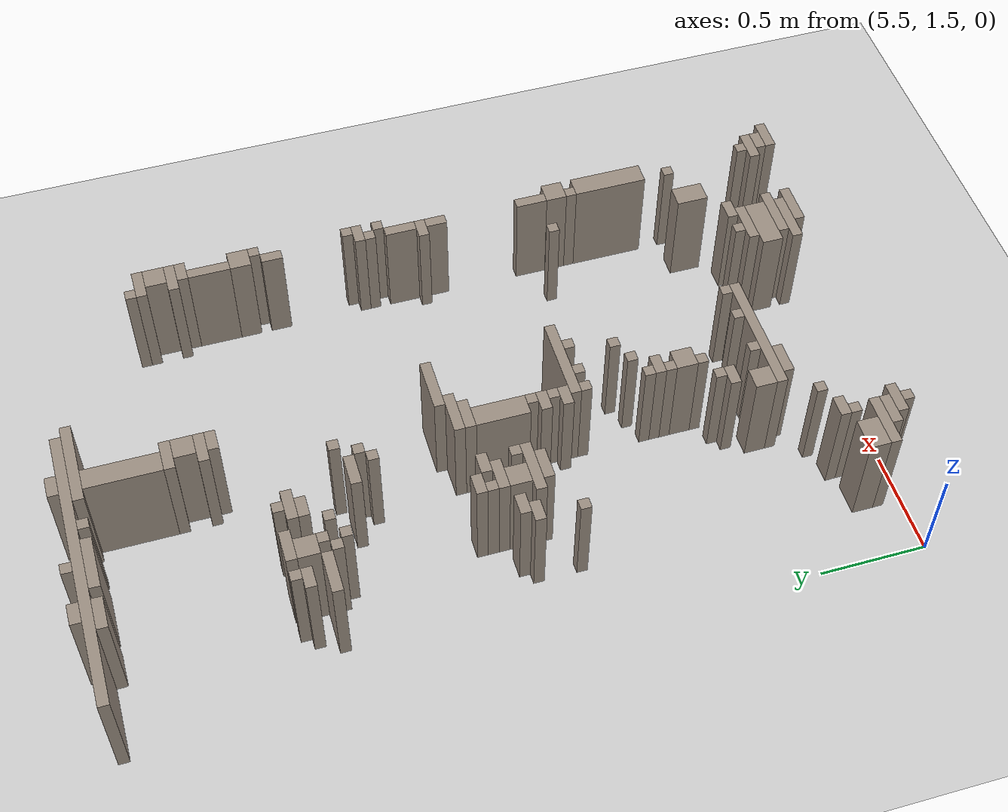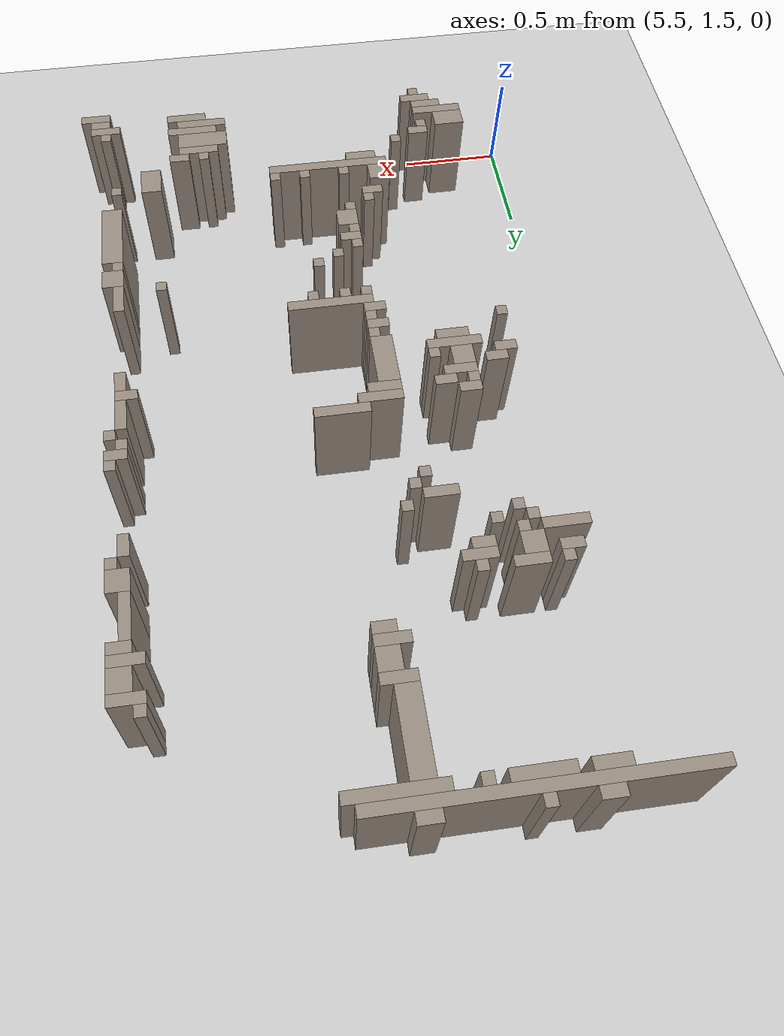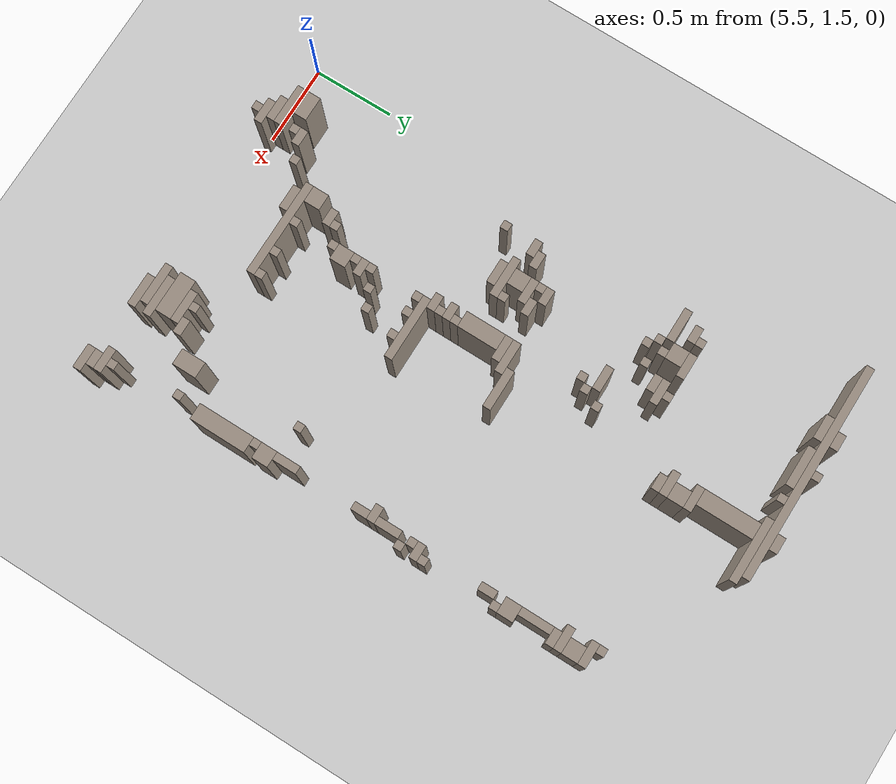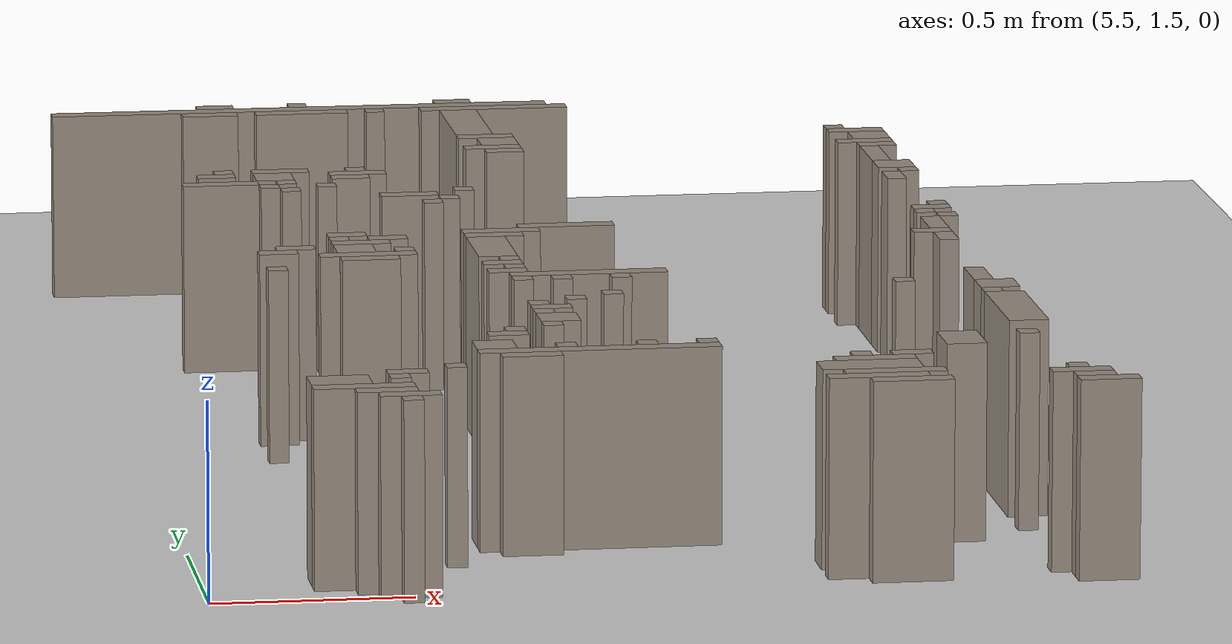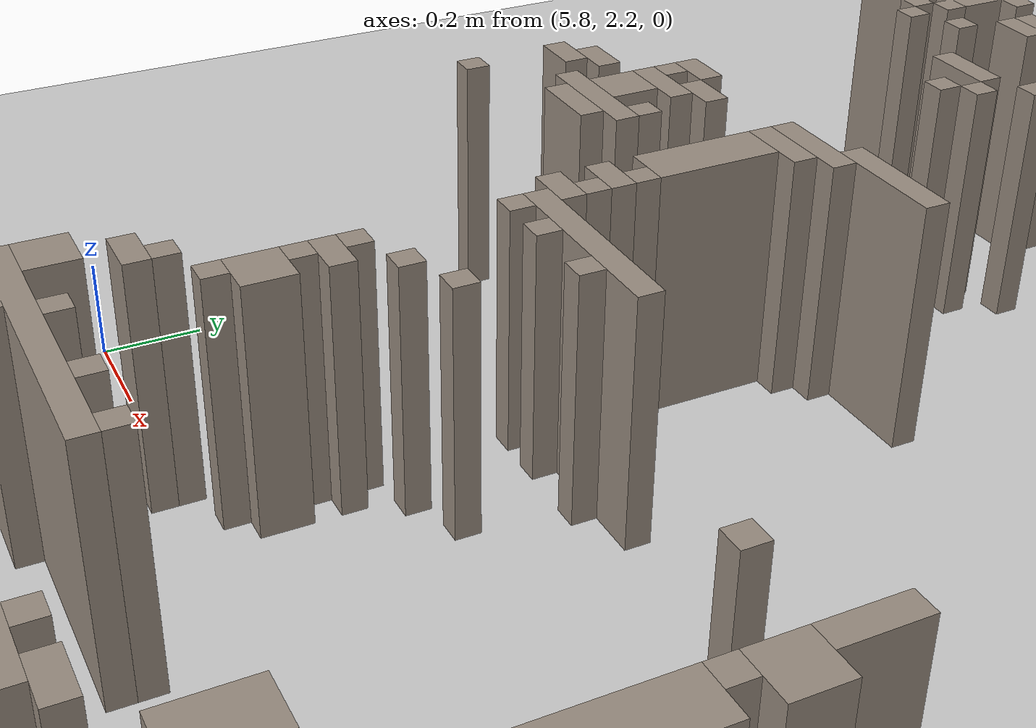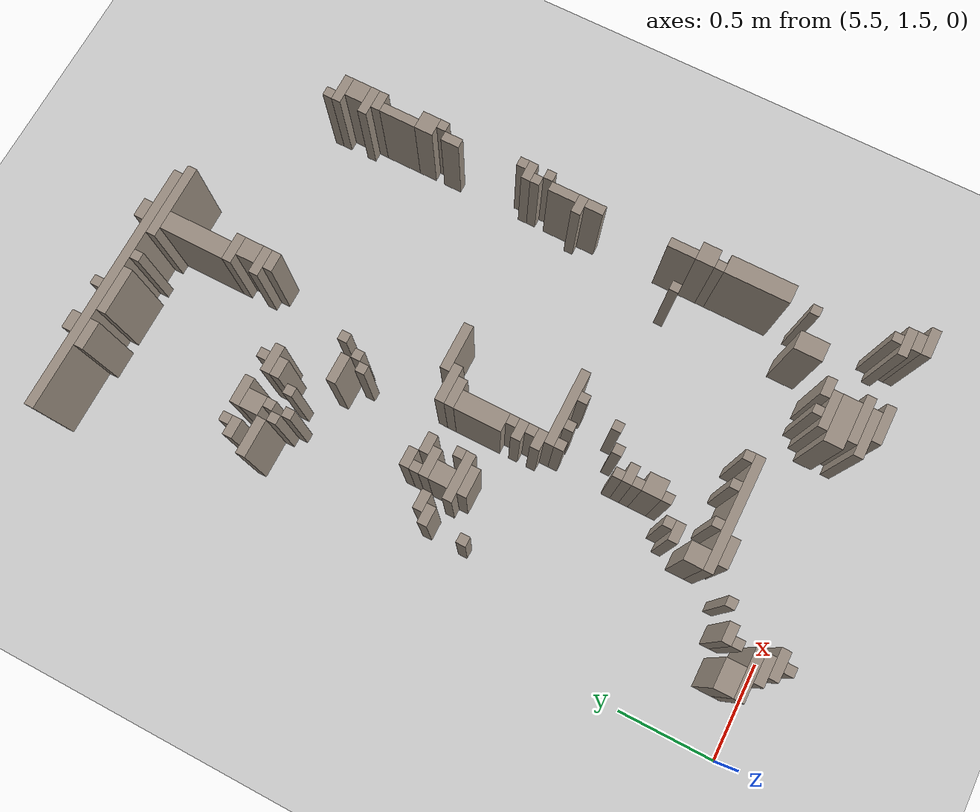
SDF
<sdf version="1.8">
 <world name="sala_real">
  <model name="ground_plane">
   <static>true</static>
   <link name="link">
    <collision name="col">
     <geometry><plane><normal>0 0 1</normal><size>100 100</size></plane></geometry>
    </collision>
    <visual name="vis">
     <geometry><plane><normal>0 0 1</normal><size>100 100</size></plane></geometry>
     <material><ambient>0.8 0.8 0.8 1</ambient><diffuse>0.8 0.8 0.8 1</diffuse></material>
    </visual>
   </link>
  </model>
  <model name="wall_0">
   <static>true</static>
   <pose>6.565 5.162 0.250 0 0 0</pose>
   <link name="link">
    <collision name="col"><geometry><box><size>0.100 0.050 0.500</size></box></geometry></collision>
    <visual name="vis">
     <geometry><box><size>0.100 0.050 0.500</size></box></geometry>
     <material><ambient>0.6 0.55 0.5 1</ambient><diffuse>0.6 0.55 0.5 1</diffuse></material>
    </visual>
   </link>
  </model>
  <model name="wall_7">
   <static>true</static>
   <pose>6.590 4.662 0.250 0 0 0</pose>
   <link name="link">
    <collision name="col"><geometry><box><size>0.150 0.050 0.500</size></box></geometry></collision>
    <visual name="vis">
     <geometry><box><size>0.150 0.050 0.500</size></box></geometry>
     <material><ambient>0.6 0.55 0.5 1</ambient><diffuse>0.6 0.55 0.5 1</diffuse></material>
    </visual>
   </link>
  </model>
  <model name="wall_9">
   <static>true</static>
   <pose>6.615 4.587 0.250 0 0 0</pose>
   <link name="link">
    <collision name="col"><geometry><box><size>0.100 0.100 0.500</size></box></geometry></collision>
    <visual name="vis">
     <geometry><box><size>0.100 0.100 0.500</size></box></geometry>
     <material><ambient>0.6 0.55 0.5 1</ambient><diffuse>0.6 0.55 0.5 1</diffuse></material>
    </visual>
   </link>
  </model>
  <model name="wall_10">
   <static>true</static>
   <pose>7.590 4.612 0.250 0 0 0</pose>
   <link name="link">
    <collision name="col"><geometry><box><size>0.150 0.050 0.500</size></box></geometry></collision>
    <visual name="vis">
     <geometry><box><size>0.150 0.050 0.500</size></box></geometry>
     <material><ambient>0.6 0.55 0.5 1</ambient><diffuse>0.6 0.55 0.5 1</diffuse></material>
    </visual>
   </link>
  </model>
  <model name="wall_12">
   <static>true</static>
   <pose>7.615 4.537 0.250 0 0 0</pose>
   <link name="link">
    <collision name="col"><geometry><box><size>0.100 0.100 0.500</size></box></geometry></collision>
    <visual name="vis">
     <geometry><box><size>0.100 0.100 0.500</size></box></geometry>
     <material><ambient>0.6 0.55 0.5 1</ambient><diffuse>0.6 0.55 0.5 1</diffuse></material>
    </visual>
   </link>
  </model>
  <model name="wall_17">
   <static>true</static>
   <pose>7.615 4.412 0.250 0 0 0</pose>
   <link name="link">
    <collision name="col"><geometry><box><size>0.100 0.050 0.500</size></box></geometry></collision>
    <visual name="vis">
     <geometry><box><size>0.100 0.050 0.500</size></box></geometry>
     <material><ambient>0.6 0.55 0.5 1</ambient><diffuse>0.6 0.55 0.5 1</diffuse></material>
    </visual>
   </link>
  </model>
  <model name="wall_19">
   <static>true</static>
   <pose>5.815 4.112 0.250 0 0 0</pose>
   <link name="link">
    <collision name="col"><geometry><box><size>0.200 0.050 0.500</size></box></geometry></collision>
    <visual name="vis">
     <geometry><box><size>0.200 0.050 0.500</size></box></geometry>
     <material><ambient>0.6 0.55 0.5 1</ambient><diffuse>0.6 0.55 0.5 1</diffuse></material>
    </visual>
   </link>
  </model>
  <model name="wall_20">
   <static>true</static>
   <pose>5.990 4.112 0.250 0 0 0</pose>
   <link name="link">
    <collision name="col"><geometry><box><size>0.050 0.050 0.500</size></box></geometry></collision>
    <visual name="vis">
     <geometry><box><size>0.050 0.050 0.500</size></box></geometry>
     <material><ambient>0.6 0.55 0.5 1</ambient><diffuse>0.6 0.55 0.5 1</diffuse></material>
    </visual>
   </link>
  </model>
  <model name="wall_21">
   <static>true</static>
   <pose>7.590 4.287 0.250 0 0 0</pose>
   <link name="link">
    <collision name="col"><geometry><box><size>0.050 0.200 0.500</size></box></geometry></collision>
    <visual name="vis">
     <geometry><box><size>0.050 0.200 0.500</size></box></geometry>
     <material><ambient>0.6 0.55 0.5 1</ambient><diffuse>0.6 0.55 0.5 1</diffuse></material>
    </visual>
   </link>
  </model>
  <model name="wall_23">
   <static>true</static>
   <pose>6.340 5.062 0.250 0 0 0</pose>
   <link name="link">
    <collision name="col"><geometry><box><size>0.050 0.050 0.500</size></box></geometry></collision>
    <visual name="vis">
     <geometry><box><size>0.050 0.050 0.500</size></box></geometry>
     <material><ambient>0.6 0.55 0.5 1</ambient><diffuse>0.6 0.55 0.5 1</diffuse></material>
    </visual>
   </link>
  </model>
  <model name="wall_27">
   <static>true</static>
   <pose>7.640 4.062 0.250 0 0 0</pose>
   <link name="link">
    <collision name="col"><geometry><box><size>0.050 0.050 0.500</size></box></geometry></collision>
    <visual name="vis">
     <geometry><box><size>0.050 0.050 0.500</size></box></geometry>
     <material><ambient>0.6 0.55 0.5 1</ambient><diffuse>0.6 0.55 0.5 1</diffuse></material>
    </visual>
   </link>
  </model>
  <model name="wall_28">
   <static>true</static>
   <pose>7.615 4.137 0.250 0 0 0</pose>
   <link name="link">
    <collision name="col"><geometry><box><size>0.100 0.100 0.500</size></box></geometry></collision>
    <visual name="vis">
     <geometry><box><size>0.100 0.100 0.500</size></box></geometry>
     <material><ambient>0.6 0.55 0.5 1</ambient><diffuse>0.6 0.55 0.5 1</diffuse></material>
    </visual>
   </link>
  </model>
  <model name="wall_30">
   <static>true</static>
   <pose>7.590 3.987 0.250 0 0 0</pose>
   <link name="link">
    <collision name="col"><geometry><box><size>0.050 0.100 0.500</size></box></geometry></collision>
    <visual name="vis">
     <geometry><box><size>0.050 0.100 0.500</size></box></geometry>
     <material><ambient>0.6 0.55 0.5 1</ambient><diffuse>0.6 0.55 0.5 1</diffuse></material>
    </visual>
   </link>
  </model>
  <model name="wall_34">
   <static>true</static>
   <pose>7.640 3.612 0.250 0 0 0</pose>
   <link name="link">
    <collision name="col"><geometry><box><size>0.050 0.050 0.500</size></box></geometry></collision>
    <visual name="vis">
     <geometry><box><size>0.050 0.050 0.500</size></box></geometry>
     <material><ambient>0.6 0.55 0.5 1</ambient><diffuse>0.6 0.55 0.5 1</diffuse></material>
    </visual>
   </link>
  </model>
  <model name="wall_36">
   <static>true</static>
   <pose>7.590 3.512 0.250 0 0 0</pose>
   <link name="link">
    <collision name="col"><geometry><box><size>0.050 0.050 0.500</size></box></geometry></collision>
    <visual name="vis">
     <geometry><box><size>0.050 0.050 0.500</size></box></geometry>
     <material><ambient>0.6 0.55 0.5 1</ambient><diffuse>0.6 0.55 0.5 1</diffuse></material>
    </visual>
   </link>
  </model>
  <model name="wall_37">
   <static>true</static>
   <pose>6.165 4.162 0.250 0 0 0</pose>
   <link name="link">
    <collision name="col"><geometry><box><size>0.100 0.050 0.500</size></box></geometry></collision>
    <visual name="vis">
     <geometry><box><size>0.100 0.050 0.500</size></box></geometry>
     <material><ambient>0.6 0.55 0.5 1</ambient><diffuse>0.6 0.55 0.5 1</diffuse></material>
    </visual>
   </link>
  </model>
  <model name="wall_39">
   <static>true</static>
   <pose>5.915 5.162 0.250 0 0 0</pose>
   <link name="link">
    <collision name="col"><geometry><box><size>0.100 0.050 0.500</size></box></geometry></collision>
    <visual name="vis">
     <geometry><box><size>0.100 0.050 0.500</size></box></geometry>
     <material><ambient>0.6 0.55 0.5 1</ambient><diffuse>0.6 0.55 0.5 1</diffuse></material>
    </visual>
   </link>
  </model>
  <model name="wall_40">
   <static>true</static>
   <pose>6.065 3.412 0.250 0 0 0</pose>
   <link name="link">
    <collision name="col"><geometry><box><size>0.100 0.050 0.500</size></box></geometry></collision>
    <visual name="vis">
     <geometry><box><size>0.100 0.050 0.500</size></box></geometry>
     <material><ambient>0.6 0.55 0.5 1</ambient><diffuse>0.6 0.55 0.5 1</diffuse></material>
    </visual>
   </link>
  </model>
  <model name="wall_41">
   <static>true</static>
   <pose>6.190 4.262 0.250 0 0 0</pose>
   <link name="link">
    <collision name="col"><geometry><box><size>0.050 0.050 0.500</size></box></geometry></collision>
    <visual name="vis">
     <geometry><box><size>0.050 0.050 0.500</size></box></geometry>
     <material><ambient>0.6 0.55 0.5 1</ambient><diffuse>0.6 0.55 0.5 1</diffuse></material>
    </visual>
   </link>
  </model>
  <model name="wall_42">
   <static>true</static>
   <pose>7.590 3.362 0.250 0 0 0</pose>
   <link name="link">
    <collision name="col"><geometry><box><size>0.050 0.150 0.500</size></box></geometry></collision>
    <visual name="vis">
     <geometry><box><size>0.050 0.150 0.500</size></box></geometry>
     <material><ambient>0.6 0.55 0.5 1</ambient><diffuse>0.6 0.55 0.5 1</diffuse></material>
    </visual>
   </link>
  </model>
  <model name="wall_46">
   <static>true</static>
   <pose>6.090 3.312 0.250 0 0 0</pose>
   <link name="link">
    <collision name="col"><geometry><box><size>0.150 0.050 0.500</size></box></geometry></collision>
    <visual name="vis">
     <geometry><box><size>0.150 0.050 0.500</size></box></geometry>
     <material><ambient>0.6 0.55 0.5 1</ambient><diffuse>0.6 0.55 0.5 1</diffuse></material>
    </visual>
   </link>
  </model>
  <model name="wall_48">
   <static>true</static>
   <pose>6.440 3.962 0.250 0 0 0</pose>
   <link name="link">
    <collision name="col"><geometry><box><size>0.050 0.050 0.500</size></box></geometry></collision>
    <visual name="vis">
     <geometry><box><size>0.050 0.050 0.500</size></box></geometry>
     <material><ambient>0.6 0.55 0.5 1</ambient><diffuse>0.6 0.55 0.5 1</diffuse></material>
    </visual>
   </link>
  </model>
  <model name="wall_50">
   <static>true</static>
   <pose>5.840 4.262 0.250 0 0 0</pose>
   <link name="link">
    <collision name="col"><geometry><box><size>0.050 0.050 0.500</size></box></geometry></collision>
    <visual name="vis">
     <geometry><box><size>0.050 0.050 0.500</size></box></geometry>
     <material><ambient>0.6 0.55 0.5 1</ambient><diffuse>0.6 0.55 0.5 1</diffuse></material>
    </visual>
   </link>
  </model>
  <model name="wall_51">
   <static>true</static>
   <pose>6.415 3.212 0.250 0 0 0</pose>
   <link name="link">
    <collision name="col"><geometry><box><size>0.100 0.250 0.500</size></box></geometry></collision>
    <visual name="vis">
     <geometry><box><size>0.100 0.250 0.500</size></box></geometry>
     <material><ambient>0.6 0.55 0.5 1</ambient><diffuse>0.6 0.55 0.5 1</diffuse></material>
    </visual>
   </link>
  </model>
  <model name="wall_53">
   <static>true</static>
   <pose>6.440 3.062 0.250 0 0 0</pose>
   <link name="link">
    <collision name="col"><geometry><box><size>0.050 0.050 0.500</size></box></geometry></collision>
    <visual name="vis">
     <geometry><box><size>0.050 0.050 0.500</size></box></geometry>
     <material><ambient>0.6 0.55 0.5 1</ambient><diffuse>0.6 0.55 0.5 1</diffuse></material>
    </visual>
   </link>
  </model>
  <model name="wall_55">
   <static>true</static>
   <pose>6.415 3.012 0.250 0 0 0</pose>
   <link name="link">
    <collision name="col"><geometry><box><size>0.100 0.050 0.500</size></box></geometry></collision>
    <visual name="vis">
     <geometry><box><size>0.100 0.050 0.500</size></box></geometry>
     <material><ambient>0.6 0.55 0.5 1</ambient><diffuse>0.6 0.55 0.5 1</diffuse></material>
    </visual>
   </link>
  </model>
  <model name="wall_60">
   <static>true</static>
   <pose>6.440 2.962 0.250 0 0 0</pose>
   <link name="link">
    <collision name="col"><geometry><box><size>0.050 0.050 0.500</size></box></geometry></collision>
    <visual name="vis">
     <geometry><box><size>0.050 0.050 0.500</size></box></geometry>
     <material><ambient>0.6 0.55 0.5 1</ambient><diffuse>0.6 0.55 0.5 1</diffuse></material>
    </visual>
   </link>
  </model>
  <model name="wall_63">
   <static>true</static>
   <pose>7.590 3.187 0.250 0 0 0</pose>
   <link name="link">
    <collision name="col"><geometry><box><size>0.050 0.100 0.500</size></box></geometry></collision>
    <visual name="vis">
     <geometry><box><size>0.050 0.100 0.500</size></box></geometry>
     <material><ambient>0.6 0.55 0.5 1</ambient><diffuse>0.6 0.55 0.5 1</diffuse></material>
    </visual>
   </link>
  </model>
  <model name="wall_64">
   <static>true</static>
   <pose>7.615 3.562 0.250 0 0 0</pose>
   <link name="link">
    <collision name="col"><geometry><box><size>0.100 0.050 0.500</size></box></geometry></collision>
    <visual name="vis">
     <geometry><box><size>0.100 0.050 0.500</size></box></geometry>
     <material><ambient>0.6 0.55 0.5 1</ambient><diffuse>0.6 0.55 0.5 1</diffuse></material>
    </visual>
   </link>
  </model>
  <model name="wall_67">
   <static>true</static>
   <pose>6.540 2.812 0.250 0 0 0</pose>
   <link name="link">
    <collision name="col"><geometry><box><size>0.050 0.050 0.500</size></box></geometry></collision>
    <visual name="vis">
     <geometry><box><size>0.050 0.050 0.500</size></box></geometry>
     <material><ambient>0.6 0.55 0.5 1</ambient><diffuse>0.6 0.55 0.5 1</diffuse></material>
    </visual>
   </link>
  </model>
  <model name="wall_71">
   <static>true</static>
   <pose>6.440 2.812 0.250 0 0 0</pose>
   <link name="link">
    <collision name="col"><geometry><box><size>0.050 0.050 0.500</size></box></geometry></collision>
    <visual name="vis">
     <geometry><box><size>0.050 0.050 0.500</size></box></geometry>
     <material><ambient>0.6 0.55 0.5 1</ambient><diffuse>0.6 0.55 0.5 1</diffuse></material>
    </visual>
   </link>
  </model>
  <model name="wall_72">
   <static>true</static>
   <pose>7.590 2.712 0.250 0 0 0</pose>
   <link name="link">
    <collision name="col"><geometry><box><size>0.050 0.150 0.500</size></box></geometry></collision>
    <visual name="vis">
     <geometry><box><size>0.050 0.150 0.500</size></box></geometry>
     <material><ambient>0.6 0.55 0.5 1</ambient><diffuse>0.6 0.55 0.5 1</diffuse></material>
    </visual>
   </link>
  </model>
  <model name="wall_74">
   <static>true</static>
   <pose>7.615 2.587 0.250 0 0 0</pose>
   <link name="link">
    <collision name="col"><geometry><box><size>0.100 0.100 0.500</size></box></geometry></collision>
    <visual name="vis">
     <geometry><box><size>0.100 0.100 0.500</size></box></geometry>
     <material><ambient>0.6 0.55 0.5 1</ambient><diffuse>0.6 0.55 0.5 1</diffuse></material>
    </visual>
   </link>
  </model>
  <model name="wall_78">
   <static>true</static>
   <pose>6.440 2.512 0.250 0 0 0</pose>
   <link name="link">
    <collision name="col"><geometry><box><size>0.050 0.050 0.500</size></box></geometry></collision>
    <visual name="vis">
     <geometry><box><size>0.050 0.050 0.500</size></box></geometry>
     <material><ambient>0.6 0.55 0.5 1</ambient><diffuse>0.6 0.55 0.5 1</diffuse></material>
    </visual>
   </link>
  </model>
  <model name="wall_81">
   <static>true</static>
   <pose>6.465 2.462 0.250 0 0 0</pose>
   <link name="link">
    <collision name="col"><geometry><box><size>0.100 0.050 0.500</size></box></geometry></collision>
    <visual name="vis">
     <geometry><box><size>0.100 0.050 0.500</size></box></geometry>
     <material><ambient>0.6 0.55 0.5 1</ambient><diffuse>0.6 0.55 0.5 1</diffuse></material>
    </visual>
   </link>
  </model>
  <model name="wall_86">
   <static>true</static>
   <pose>6.440 2.412 0.250 0 0 0</pose>
   <link name="link">
    <collision name="col"><geometry><box><size>0.050 0.050 0.500</size></box></geometry></collision>
    <visual name="vis">
     <geometry><box><size>0.050 0.050 0.500</size></box></geometry>
     <material><ambient>0.6 0.55 0.5 1</ambient><diffuse>0.6 0.55 0.5 1</diffuse></material>
    </visual>
   </link>
  </model>
  <model name="wall_88">
   <static>true</static>
   <pose>6.340 3.812 0.250 0 0 0</pose>
   <link name="link">
    <collision name="col"><geometry><box><size>0.050 0.050 0.500</size></box></geometry></collision>
    <visual name="vis">
     <geometry><box><size>0.050 0.050 0.500</size></box></geometry>
     <material><ambient>0.6 0.55 0.5 1</ambient><diffuse>0.6 0.55 0.5 1</diffuse></material>
    </visual>
   </link>
  </model>
  <model name="wall_96">
   <static>true</static>
   <pose>6.440 2.262 0.250 0 0 0</pose>
   <link name="link">
    <collision name="col"><geometry><box><size>0.050 0.050 0.500</size></box></geometry></collision>
    <visual name="vis">
     <geometry><box><size>0.050 0.050 0.500</size></box></geometry>
     <material><ambient>0.6 0.55 0.5 1</ambient><diffuse>0.6 0.55 0.5 1</diffuse></material>
    </visual>
   </link>
  </model>
  <model name="wall_97">
   <static>true</static>
   <pose>6.640 2.612 0.250 0 0 0</pose>
   <link name="link">
    <collision name="col"><geometry><box><size>0.050 0.050 0.500</size></box></geometry></collision>
    <visual name="vis">
     <geometry><box><size>0.050 0.050 0.500</size></box></geometry>
     <material><ambient>0.6 0.55 0.5 1</ambient><diffuse>0.6 0.55 0.5 1</diffuse></material>
    </visual>
   </link>
  </model>
  <model name="wall_98">
   <static>true</static>
   <pose>7.590 2.512 0.250 0 0 0</pose>
   <link name="link">
    <collision name="col"><geometry><box><size>0.050 0.050 0.500</size></box></geometry></collision>
    <visual name="vis">
     <geometry><box><size>0.050 0.050 0.500</size></box></geometry>
     <material><ambient>0.6 0.55 0.5 1</ambient><diffuse>0.6 0.55 0.5 1</diffuse></material>
    </visual>
   </link>
  </model>
  <model name="wall_101">
   <static>true</static>
   <pose>5.815 4.212 0.250 0 0 0</pose>
   <link name="link">
    <collision name="col"><geometry><box><size>0.100 0.050 0.500</size></box></geometry></collision>
    <visual name="vis">
     <geometry><box><size>0.100 0.050 0.500</size></box></geometry>
     <material><ambient>0.6 0.55 0.5 1</ambient><diffuse>0.6 0.55 0.5 1</diffuse></material>
    </visual>
   </link>
  </model>
  <model name="wall_106">
   <static>true</static>
   <pose>6.140 5.162 0.250 0 0 0</pose>
   <link name="link">
    <collision name="col"><geometry><box><size>0.050 0.050 0.500</size></box></geometry></collision>
    <visual name="vis">
     <geometry><box><size>0.050 0.050 0.500</size></box></geometry>
     <material><ambient>0.6 0.55 0.5 1</ambient><diffuse>0.6 0.55 0.5 1</diffuse></material>
    </visual>
   </link>
  </model>
  <model name="wall_108">
   <static>true</static>
   <pose>5.990 4.012 0.250 0 0 0</pose>
   <link name="link">
    <collision name="col"><geometry><box><size>0.050 0.050 0.500</size></box></geometry></collision>
    <visual name="vis">
     <geometry><box><size>0.050 0.050 0.500</size></box></geometry>
     <material><ambient>0.6 0.55 0.5 1</ambient><diffuse>0.6 0.55 0.5 1</diffuse></material>
    </visual>
   </link>
  </model>
  <model name="wall_111">
   <static>true</static>
   <pose>7.640 3.462 0.250 0 0 0</pose>
   <link name="link">
    <collision name="col"><geometry><box><size>0.050 0.050 0.500</size></box></geometry></collision>
    <visual name="vis">
     <geometry><box><size>0.050 0.050 0.500</size></box></geometry>
     <material><ambient>0.6 0.55 0.5 1</ambient><diffuse>0.6 0.55 0.5 1</diffuse></material>
    </visual>
   </link>
  </model>
  <model name="wall_112">
   <static>true</static>
   <pose>7.140 1.687 0.250 0 0 0</pose>
   <link name="link">
    <collision name="col"><geometry><box><size>0.250 0.100 0.500</size></box></geometry></collision>
    <visual name="vis">
     <geometry><box><size>0.250 0.100 0.500</size></box></geometry>
     <material><ambient>0.6 0.55 0.5 1</ambient><diffuse>0.6 0.55 0.5 1</diffuse></material>
    </visual>
   </link>
  </model>
  <model name="wall_114">
   <static>true</static>
   <pose>5.990 4.262 0.250 0 0 0</pose>
   <link name="link">
    <collision name="col"><geometry><box><size>0.150 0.050 0.500</size></box></geometry></collision>
    <visual name="vis">
     <geometry><box><size>0.150 0.050 0.500</size></box></geometry>
     <material><ambient>0.6 0.55 0.5 1</ambient><diffuse>0.6 0.55 0.5 1</diffuse></material>
    </visual>
   </link>
  </model>
  <model name="wall_116">
   <static>true</static>
   <pose>5.990 1.712 0.250 0 0 0</pose>
   <link name="link">
    <collision name="col"><geometry><box><size>0.050 0.050 0.500</size></box></geometry></collision>
    <visual name="vis">
     <geometry><box><size>0.050 0.050 0.500</size></box></geometry>
     <material><ambient>0.6 0.55 0.5 1</ambient><diffuse>0.6 0.55 0.5 1</diffuse></material>
    </visual>
   </link>
  </model>
  <model name="wall_118">
   <static>true</static>
   <pose>7.690 1.462 0.250 0 0 0</pose>
   <link name="link">
    <collision name="col"><geometry><box><size>0.150 0.050 0.500</size></box></geometry></collision>
    <visual name="vis">
     <geometry><box><size>0.150 0.050 0.500</size></box></geometry>
     <material><ambient>0.6 0.55 0.5 1</ambient><diffuse>0.6 0.55 0.5 1</diffuse></material>
    </visual>
   </link>
  </model>
  <model name="wall_121">
   <static>true</static>
   <pose>7.665 1.512 0.250 0 0 0</pose>
   <link name="link">
    <collision name="col"><geometry><box><size>0.100 0.050 0.500</size></box></geometry></collision>
    <visual name="vis">
     <geometry><box><size>0.100 0.050 0.500</size></box></geometry>
     <material><ambient>0.6 0.55 0.5 1</ambient><diffuse>0.6 0.55 0.5 1</diffuse></material>
    </visual>
   </link>
  </model>
  <model name="wall_136">
   <static>true</static>
   <pose>6.565 4.862 0.250 0 0 0</pose>
   <link name="link">
    <collision name="col"><geometry><box><size>0.100 0.350 0.500</size></box></geometry></collision>
    <visual name="vis">
     <geometry><box><size>0.100 0.350 0.500</size></box></geometry>
     <material><ambient>0.6 0.55 0.5 1</ambient><diffuse>0.6 0.55 0.5 1</diffuse></material>
    </visual>
   </link>
  </model>
  <model name="wall_138">
   <static>true</static>
   <pose>5.990 1.462 0.250 0 0 0</pose>
   <link name="link">
    <collision name="col"><geometry><box><size>0.050 0.050 0.500</size></box></geometry></collision>
    <visual name="vis">
     <geometry><box><size>0.050 0.050 0.500</size></box></geometry>
     <material><ambient>0.6 0.55 0.5 1</ambient><diffuse>0.6 0.55 0.5 1</diffuse></material>
    </visual>
   </link>
  </model>
  <model name="wall_140">
   <static>true</static>
   <pose>6.015 1.762 0.250 0 0 0</pose>
   <link name="link">
    <collision name="col"><geometry><box><size>0.100 0.050 0.500</size></box></geometry></collision>
    <visual name="vis">
     <geometry><box><size>0.100 0.050 0.500</size></box></geometry>
     <material><ambient>0.6 0.55 0.5 1</ambient><diffuse>0.6 0.55 0.5 1</diffuse></material>
    </visual>
   </link>
  </model>
  <model name="wall_145">
   <static>true</static>
   <pose>5.990 1.512 0.250 0 0 0</pose>
   <link name="link">
    <collision name="col"><geometry><box><size>0.150 0.050 0.500</size></box></geometry></collision>
    <visual name="vis">
     <geometry><box><size>0.150 0.050 0.500</size></box></geometry>
     <material><ambient>0.6 0.55 0.5 1</ambient><diffuse>0.6 0.55 0.5 1</diffuse></material>
    </visual>
   </link>
  </model>
  <model name="wall_149">
   <static>true</static>
   <pose>6.040 3.362 0.250 0 0 0</pose>
   <link name="link">
    <collision name="col"><geometry><box><size>0.050 0.050 0.500</size></box></geometry></collision>
    <visual name="vis">
     <geometry><box><size>0.050 0.050 0.500</size></box></geometry>
     <material><ambient>0.6 0.55 0.5 1</ambient><diffuse>0.6 0.55 0.5 1</diffuse></material>
    </visual>
   </link>
  </model>
  <model name="wall_150">
   <static>true</static>
   <pose>6.140 1.812 0.250 0 0 0</pose>
   <link name="link">
    <collision name="col"><geometry><box><size>0.050 0.050 0.500</size></box></geometry></collision>
    <visual name="vis">
     <geometry><box><size>0.050 0.050 0.500</size></box></geometry>
     <material><ambient>0.6 0.55 0.5 1</ambient><diffuse>0.6 0.55 0.5 1</diffuse></material>
    </visual>
   </link>
  </model>
  <model name="wall_156">
   <static>true</static>
   <pose>6.065 3.237 0.250 0 0 0</pose>
   <link name="link">
    <collision name="col"><geometry><box><size>0.100 0.100 0.500</size></box></geometry></collision>
    <visual name="vis">
     <geometry><box><size>0.100 0.100 0.500</size></box></geometry>
     <material><ambient>0.6 0.55 0.5 1</ambient><diffuse>0.6 0.55 0.5 1</diffuse></material>
    </visual>
   </link>
  </model>
  <model name="wall_160">
   <static>true</static>
   <pose>6.190 3.212 0.250 0 0 0</pose>
   <link name="link">
    <collision name="col"><geometry><box><size>0.050 0.050 0.500</size></box></geometry></collision>
    <visual name="vis">
     <geometry><box><size>0.050 0.050 0.500</size></box></geometry>
     <material><ambient>0.6 0.55 0.5 1</ambient><diffuse>0.6 0.55 0.5 1</diffuse></material>
    </visual>
   </link>
  </model>
  <model name="wall_161">
   <static>true</static>
   <pose>7.640 1.612 0.250 0 0 0</pose>
   <link name="link">
    <collision name="col"><geometry><box><size>0.050 0.050 0.500</size></box></geometry></collision>
    <visual name="vis">
     <geometry><box><size>0.050 0.050 0.500</size></box></geometry>
     <material><ambient>0.6 0.55 0.5 1</ambient><diffuse>0.6 0.55 0.5 1</diffuse></material>
    </visual>
   </link>
  </model>
  <model name="wall_171">
   <static>true</static>
   <pose>7.565 3.262 0.250 0 0 0</pose>
   <link name="link">
    <collision name="col"><geometry><box><size>0.100 0.050 0.500</size></box></geometry></collision>
    <visual name="vis">
     <geometry><box><size>0.100 0.050 0.500</size></box></geometry>
     <material><ambient>0.6 0.55 0.5 1</ambient><diffuse>0.6 0.55 0.5 1</diffuse></material>
    </visual>
   </link>
  </model>
  <model name="wall_181">
   <static>true</static>
   <pose>6.690 2.812 0.250 0 0 0</pose>
   <link name="link">
    <collision name="col"><geometry><box><size>0.050 0.050 0.500</size></box></geometry></collision>
    <visual name="vis">
     <geometry><box><size>0.050 0.050 0.500</size></box></geometry>
     <material><ambient>0.6 0.55 0.5 1</ambient><diffuse>0.6 0.55 0.5 1</diffuse></material>
    </visual>
   </link>
  </model>
  <model name="wall_182">
   <static>true</static>
   <pose>6.790 2.012 0.250 0 0 0</pose>
   <link name="link">
    <collision name="col"><geometry><box><size>0.050 0.050 0.500</size></box></geometry></collision>
    <visual name="vis">
     <geometry><box><size>0.050 0.050 0.500</size></box></geometry>
     <material><ambient>0.6 0.55 0.5 1</ambient><diffuse>0.6 0.55 0.5 1</diffuse></material>
    </visual>
   </link>
  </model>
  <model name="wall_186">
   <static>true</static>
   <pose>7.140 1.812 0.250 0 0 0</pose>
   <link name="link">
    <collision name="col"><geometry><box><size>0.050 0.050 0.500</size></box></geometry></collision>
    <visual name="vis">
     <geometry><box><size>0.050 0.050 0.500</size></box></geometry>
     <material><ambient>0.6 0.55 0.5 1</ambient><diffuse>0.6 0.55 0.5 1</diffuse></material>
    </visual>
   </link>
  </model>
  <model name="wall_290">
   <static>true</static>
   <pose>6.390 3.862 0.250 0 0 0</pose>
   <link name="link">
    <collision name="col"><geometry><box><size>0.050 0.050 0.500</size></box></geometry></collision>
    <visual name="vis">
     <geometry><box><size>0.050 0.050 0.500</size></box></geometry>
     <material><ambient>0.6 0.55 0.5 1</ambient><diffuse>0.6 0.55 0.5 1</diffuse></material>
    </visual>
   </link>
  </model>
  <model name="wall_300">
   <static>true</static>
   <pose>6.340 2.212 0.250 0 0 0</pose>
   <link name="link">
    <collision name="col"><geometry><box><size>0.050 0.050 0.500</size></box></geometry></collision>
    <visual name="vis">
     <geometry><box><size>0.050 0.050 0.500</size></box></geometry>
     <material><ambient>0.6 0.55 0.5 1</ambient><diffuse>0.6 0.55 0.5 1</diffuse></material>
    </visual>
   </link>
  </model>
  <model name="wall_305">
   <static>true</static>
   <pose>7.265 1.812 0.250 0 0 0</pose>
   <link name="link">
    <collision name="col"><geometry><box><size>0.100 0.050 0.500</size></box></geometry></collision>
    <visual name="vis">
     <geometry><box><size>0.100 0.050 0.500</size></box></geometry>
     <material><ambient>0.6 0.55 0.5 1</ambient><diffuse>0.6 0.55 0.5 1</diffuse></material>
    </visual>
   </link>
  </model>
  <model name="wall_306">
   <static>true</static>
   <pose>7.590 2.012 0.250 0 0 0</pose>
   <link name="link">
    <collision name="col"><geometry><box><size>0.050 0.050 0.500</size></box></geometry></collision>
    <visual name="vis">
     <geometry><box><size>0.050 0.050 0.500</size></box></geometry>
     <material><ambient>0.6 0.55 0.5 1</ambient><diffuse>0.6 0.55 0.5 1</diffuse></material>
    </visual>
   </link>
  </model>
  <model name="wall_310">
   <static>true</static>
   <pose>6.640 2.012 0.250 0 0 0</pose>
   <link name="link">
    <collision name="col"><geometry><box><size>0.050 0.050 0.500</size></box></geometry></collision>
    <visual name="vis">
     <geometry><box><size>0.050 0.050 0.500</size></box></geometry>
     <material><ambient>0.6 0.55 0.5 1</ambient><diffuse>0.6 0.55 0.5 1</diffuse></material>
    </visual>
   </link>
  </model>
  <model name="wall_334">
   <static>true</static>
   <pose>6.165 3.362 0.250 0 0 0</pose>
   <link name="link">
    <collision name="col"><geometry><box><size>0.100 0.050 0.500</size></box></geometry></collision>
    <visual name="vis">
     <geometry><box><size>0.100 0.050 0.500</size></box></geometry>
     <material><ambient>0.6 0.55 0.5 1</ambient><diffuse>0.6 0.55 0.5 1</diffuse></material>
    </visual>
   </link>
  </model>
  <model name="wall_335">
   <static>true</static>
   <pose>7.215 1.512 0.250 0 0 0</pose>
   <link name="link">
    <collision name="col"><geometry><box><size>0.200 0.050 0.500</size></box></geometry></collision>
    <visual name="vis">
     <geometry><box><size>0.200 0.050 0.500</size></box></geometry>
     <material><ambient>0.6 0.55 0.5 1</ambient><diffuse>0.6 0.55 0.5 1</diffuse></material>
    </visual>
   </link>
  </model>
  <model name="wall_364">
   <static>true</static>
   <pose>5.940 4.062 0.250 0 0 0</pose>
   <link name="link">
    <collision name="col"><geometry><box><size>0.050 0.050 0.500</size></box></geometry></collision>
    <visual name="vis">
     <geometry><box><size>0.050 0.050 0.500</size></box></geometry>
     <material><ambient>0.6 0.55 0.5 1</ambient><diffuse>0.6 0.55 0.5 1</diffuse></material>
    </visual>
   </link>
  </model>
  <model name="wall_373">
   <static>true</static>
   <pose>6.440 2.012 0.250 0 0 0</pose>
   <link name="link">
    <collision name="col"><geometry><box><size>0.050 0.050 0.500</size></box></geometry></collision>
    <visual name="vis">
     <geometry><box><size>0.050 0.050 0.500</size></box></geometry>
     <material><ambient>0.6 0.55 0.5 1</ambient><diffuse>0.6 0.55 0.5 1</diffuse></material>
    </visual>
   </link>
  </model>
  <model name="wall_381">
   <static>true</static>
   <pose>6.540 2.562 0.250 0 0 0</pose>
   <link name="link">
    <collision name="col"><geometry><box><size>0.050 0.050 0.500</size></box></geometry></collision>
    <visual name="vis">
     <geometry><box><size>0.050 0.050 0.500</size></box></geometry>
     <material><ambient>0.6 0.55 0.5 1</ambient><diffuse>0.6 0.55 0.5 1</diffuse></material>
    </visual>
   </link>
  </model>
  <model name="wall_611">
   <static>true</static>
   <pose>5.915 3.262 0.250 0 0 0</pose>
   <link name="link">
    <collision name="col"><geometry><box><size>0.100 0.050 0.500</size></box></geometry></collision>
    <visual name="vis">
     <geometry><box><size>0.100 0.050 0.500</size></box></geometry>
     <material><ambient>0.6 0.55 0.5 1</ambient><diffuse>0.6 0.55 0.5 1</diffuse></material>
    </visual>
   </link>
  </model>
  <model name="wall_621">
   <static>true</static>
   <pose>6.140 5.112 0.250 0 0 0</pose>
   <link name="link">
    <collision name="col"><geometry><box><size>1.350 0.050 0.500</size></box></geometry></collision>
    <visual name="vis">
     <geometry><box><size>1.350 0.050 0.500</size></box></geometry>
     <material><ambient>0.6 0.55 0.5 1</ambient><diffuse>0.6 0.55 0.5 1</diffuse></material>
    </visual>
   </link>
  </model>
  <model name="wall_625">
   <static>true</static>
   <pose>5.890 5.062 0.250 0 0 0</pose>
   <link name="link">
    <collision name="col"><geometry><box><size>0.150 0.050 0.500</size></box></geometry></collision>
    <visual name="vis">
     <geometry><box><size>0.150 0.050 0.500</size></box></geometry>
     <material><ambient>0.6 0.55 0.5 1</ambient><diffuse>0.6 0.55 0.5 1</diffuse></material>
    </visual>
   </link>
  </model>
  <model name="wall_626">
   <static>true</static>
   <pose>6.140 5.062 0.250 0 0 0</pose>
   <link name="link">
    <collision name="col"><geometry><box><size>0.250 0.050 0.500</size></box></geometry></collision>
    <visual name="vis">
     <geometry><box><size>0.250 0.050 0.500</size></box></geometry>
     <material><ambient>0.6 0.55 0.5 1</ambient><diffuse>0.6 0.55 0.5 1</diffuse></material>
    </visual>
   </link>
  </model>
  <model name="wall_628">
   <static>true</static>
   <pose>6.665 5.062 0.250 0 0 0</pose>
   <link name="link">
    <collision name="col"><geometry><box><size>0.400 0.050 0.500</size></box></geometry></collision>
    <visual name="vis">
     <geometry><box><size>0.400 0.050 0.500</size></box></geometry>
     <material><ambient>0.6 0.55 0.5 1</ambient><diffuse>0.6 0.55 0.5 1</diffuse></material>
    </visual>
   </link>
  </model>
  <model name="wall_673">
   <static>true</static>
   <pose>6.590 4.512 0.250 0 0 0</pose>
   <link name="link">
    <collision name="col"><geometry><box><size>0.150 0.050 0.500</size></box></geometry></collision>
    <visual name="vis">
     <geometry><box><size>0.150 0.050 0.500</size></box></geometry>
     <material><ambient>0.6 0.55 0.5 1</ambient><diffuse>0.6 0.55 0.5 1</diffuse></material>
    </visual>
   </link>
  </model>
  <model name="wall_674">
   <static>true</static>
   <pose>7.540 4.662 0.250 0 0 0</pose>
   <link name="link">
    <collision name="col"><geometry><box><size>0.050 0.050 0.500</size></box></geometry></collision>
    <visual name="vis">
     <geometry><box><size>0.050 0.050 0.500</size></box></geometry>
     <material><ambient>0.6 0.55 0.5 1</ambient><diffuse>0.6 0.55 0.5 1</diffuse></material>
    </visual>
   </link>
  </model>
  <model name="wall_680">
   <static>true</static>
   <pose>6.615 4.462 0.250 0 0 0</pose>
   <link name="link">
    <collision name="col"><geometry><box><size>0.100 0.050 0.500</size></box></geometry></collision>
    <visual name="vis">
     <geometry><box><size>0.100 0.050 0.500</size></box></geometry>
     <material><ambient>0.6 0.55 0.5 1</ambient><diffuse>0.6 0.55 0.5 1</diffuse></material>
    </visual>
   </link>
  </model>
  <model name="wall_681">
   <static>true</static>
   <pose>7.590 4.462 0.250 0 0 0</pose>
   <link name="link">
    <collision name="col"><geometry><box><size>0.150 0.050 0.500</size></box></geometry></collision>
    <visual name="vis">
     <geometry><box><size>0.150 0.050 0.500</size></box></geometry>
     <material><ambient>0.6 0.55 0.5 1</ambient><diffuse>0.6 0.55 0.5 1</diffuse></material>
    </visual>
   </link>
  </model>
  <model name="wall_687">
   <static>true</static>
   <pose>7.615 2.312 0.250 0 0 0</pose>
   <link name="link">
    <collision name="col"><geometry><box><size>0.100 0.350 0.500</size></box></geometry></collision>
    <visual name="vis">
     <geometry><box><size>0.100 0.350 0.500</size></box></geometry>
     <material><ambient>0.6 0.55 0.5 1</ambient><diffuse>0.6 0.55 0.5 1</diffuse></material>
    </visual>
   </link>
  </model>
  <model name="wall_702">
   <static>true</static>
   <pose>5.840 3.012 0.250 0 0 0</pose>
   <link name="link">
    <collision name="col"><geometry><box><size>0.050 0.050 0.500</size></box></geometry></collision>
    <visual name="vis">
     <geometry><box><size>0.050 0.050 0.500</size></box></geometry>
     <material><ambient>0.6 0.55 0.5 1</ambient><diffuse>0.6 0.55 0.5 1</diffuse></material>
    </visual>
   </link>
  </model>
  <model name="wall_706">
   <static>true</static>
   <pose>5.965 4.187 0.250 0 0 0</pose>
   <link name="link">
    <collision name="col"><geometry><box><size>0.100 0.100 0.500</size></box></geometry></collision>
    <visual name="vis">
     <geometry><box><size>0.100 0.100 0.500</size></box></geometry>
     <material><ambient>0.6 0.55 0.5 1</ambient><diffuse>0.6 0.55 0.5 1</diffuse></material>
    </visual>
   </link>
  </model>
  <model name="wall_707">
   <static>true</static>
   <pose>6.190 4.212 0.250 0 0 0</pose>
   <link name="link">
    <collision name="col"><geometry><box><size>0.150 0.050 0.500</size></box></geometry></collision>
    <visual name="vis">
     <geometry><box><size>0.150 0.050 0.500</size></box></geometry>
     <material><ambient>0.6 0.55 0.5 1</ambient><diffuse>0.6 0.55 0.5 1</diffuse></material>
    </visual>
   </link>
  </model>
  <model name="wall_716">
   <static>true</static>
   <pose>6.090 4.062 0.250 0 0 0</pose>
   <link name="link">
    <collision name="col"><geometry><box><size>0.050 0.050 0.500</size></box></geometry></collision>
    <visual name="vis">
     <geometry><box><size>0.050 0.050 0.500</size></box></geometry>
     <material><ambient>0.6 0.55 0.5 1</ambient><diffuse>0.6 0.55 0.5 1</diffuse></material>
    </visual>
   </link>
  </model>
  <model name="wall_722">
   <static>true</static>
   <pose>6.290 3.912 0.250 0 0 0</pose>
   <link name="link">
    <collision name="col"><geometry><box><size>0.150 0.050 0.500</size></box></geometry></collision>
    <visual name="vis">
     <geometry><box><size>0.150 0.050 0.500</size></box></geometry>
     <material><ambient>0.6 0.55 0.5 1</ambient><diffuse>0.6 0.55 0.5 1</diffuse></material>
    </visual>
   </link>
  </model>
  <model name="wall_739">
   <static>true</static>
   <pose>6.640 3.462 0.250 0 0 0</pose>
   <link name="link">
    <collision name="col"><geometry><box><size>0.250 0.050 0.500</size></box></geometry></collision>
    <visual name="vis">
     <geometry><box><size>0.250 0.050 0.500</size></box></geometry>
     <material><ambient>0.6 0.55 0.5 1</ambient><diffuse>0.6 0.55 0.5 1</diffuse></material>
    </visual>
   </link>
  </model>
  <model name="wall_745">
   <static>true</static>
   <pose>6.465 3.412 0.250 0 0 0</pose>
   <link name="link">
    <collision name="col"><geometry><box><size>0.200 0.050 0.500</size></box></geometry></collision>
    <visual name="vis">
     <geometry><box><size>0.200 0.050 0.500</size></box></geometry>
     <material><ambient>0.6 0.55 0.5 1</ambient><diffuse>0.6 0.55 0.5 1</diffuse></material>
    </visual>
   </link>
  </model>
  <model name="wall_751">
   <static>true</static>
   <pose>6.440 3.362 0.250 0 0 0</pose>
   <link name="link">
    <collision name="col"><geometry><box><size>0.150 0.050 0.500</size></box></geometry></collision>
    <visual name="vis">
     <geometry><box><size>0.150 0.050 0.500</size></box></geometry>
     <material><ambient>0.6 0.55 0.5 1</ambient><diffuse>0.6 0.55 0.5 1</diffuse></material>
    </visual>
   </link>
  </model>
  <model name="wall_756">
   <static>true</static>
   <pose>6.090 3.112 0.250 0 0 0</pose>
   <link name="link">
    <collision name="col"><geometry><box><size>0.150 0.050 0.500</size></box></geometry></collision>
    <visual name="vis">
     <geometry><box><size>0.150 0.050 0.500</size></box></geometry>
     <material><ambient>0.6 0.55 0.5 1</ambient><diffuse>0.6 0.55 0.5 1</diffuse></material>
    </visual>
   </link>
  </model>
  <model name="wall_757">
   <static>true</static>
   <pose>6.415 2.912 0.250 0 0 0</pose>
   <link name="link">
    <collision name="col"><geometry><box><size>0.100 0.050 0.500</size></box></geometry></collision>
    <visual name="vis">
     <geometry><box><size>0.100 0.050 0.500</size></box></geometry>
     <material><ambient>0.6 0.55 0.5 1</ambient><diffuse>0.6 0.55 0.5 1</diffuse></material>
    </visual>
   </link>
  </model>
  <model name="wall_768">
   <static>true</static>
   <pose>5.865 3.212 0.250 0 0 0</pose>
   <link name="link">
    <collision name="col"><geometry><box><size>0.100 0.050 0.500</size></box></geometry></collision>
    <visual name="vis">
     <geometry><box><size>0.100 0.050 0.500</size></box></geometry>
     <material><ambient>0.6 0.55 0.5 1</ambient><diffuse>0.6 0.55 0.5 1</diffuse></material>
    </visual>
   </link>
  </model>
  <model name="wall_772">
   <static>true</static>
   <pose>6.090 3.162 0.250 0 0 0</pose>
   <link name="link">
    <collision name="col"><geometry><box><size>0.250 0.050 0.500</size></box></geometry></collision>
    <visual name="vis">
     <geometry><box><size>0.250 0.050 0.500</size></box></geometry>
     <material><ambient>0.6 0.55 0.5 1</ambient><diffuse>0.6 0.55 0.5 1</diffuse></material>
    </visual>
   </link>
  </model>
  <model name="wall_786">
   <static>true</static>
   <pose>6.615 2.862 0.250 0 0 0</pose>
   <link name="link">
    <collision name="col"><geometry><box><size>0.400 0.050 0.500</size></box></geometry></collision>
    <visual name="vis">
     <geometry><box><size>0.400 0.050 0.500</size></box></geometry>
     <material><ambient>0.6 0.55 0.5 1</ambient><diffuse>0.6 0.55 0.5 1</diffuse></material>
    </visual>
   </link>
  </model>
  <model name="wall_789">
   <static>true</static>
   <pose>7.390 2.662 0.250 0 0 0</pose>
   <link name="link">
    <collision name="col"><geometry><box><size>0.050 0.050 0.500</size></box></geometry></collision>
    <visual name="vis">
     <geometry><box><size>0.050 0.050 0.500</size></box></geometry>
     <material><ambient>0.6 0.55 0.5 1</ambient><diffuse>0.6 0.55 0.5 1</diffuse></material>
    </visual>
   </link>
  </model>
  <model name="wall_794">
   <static>true</static>
   <pose>6.465 2.337 0.250 0 0 0</pose>
   <link name="link">
    <collision name="col"><geometry><box><size>0.100 0.100 0.500</size></box></geometry></collision>
    <visual name="vis">
     <geometry><box><size>0.100 0.100 0.500</size></box></geometry>
     <material><ambient>0.6 0.55 0.5 1</ambient><diffuse>0.6 0.55 0.5 1</diffuse></material>
    </visual>
   </link>
  </model>
  <model name="wall_797">
   <static>true</static>
   <pose>6.315 2.162 0.250 0 0 0</pose>
   <link name="link">
    <collision name="col"><geometry><box><size>0.100 0.050 0.500</size></box></geometry></collision>
    <visual name="vis">
     <geometry><box><size>0.100 0.050 0.500</size></box></geometry>
     <material><ambient>0.6 0.55 0.5 1</ambient><diffuse>0.6 0.55 0.5 1</diffuse></material>
    </visual>
   </link>
  </model>
  <model name="wall_800">
   <static>true</static>
   <pose>6.265 2.037 0.250 0 0 0</pose>
   <link name="link">
    <collision name="col"><geometry><box><size>0.100 0.100 0.500</size></box></geometry></collision>
    <visual name="vis">
     <geometry><box><size>0.100 0.100 0.500</size></box></geometry>
     <material><ambient>0.6 0.55 0.5 1</ambient><diffuse>0.6 0.55 0.5 1</diffuse></material>
    </visual>
   </link>
  </model>
  <model name="wall_803">
   <static>true</static>
   <pose>7.415 1.962 0.250 0 0 0</pose>
   <link name="link">
    <collision name="col"><geometry><box><size>0.100 0.150 0.500</size></box></geometry></collision>
    <visual name="vis">
     <geometry><box><size>0.100 0.150 0.500</size></box></geometry>
     <material><ambient>0.6 0.55 0.5 1</ambient><diffuse>0.6 0.55 0.5 1</diffuse></material>
    </visual>
   </link>
  </model>
  <model name="wall_807">
   <static>true</static>
   <pose>6.515 1.962 0.250 0 0 0</pose>
   <link name="link">
    <collision name="col"><geometry><box><size>0.600 0.050 0.500</size></box></geometry></collision>
    <visual name="vis">
     <geometry><box><size>0.600 0.050 0.500</size></box></geometry>
     <material><ambient>0.6 0.55 0.5 1</ambient><diffuse>0.6 0.55 0.5 1</diffuse></material>
    </visual>
   </link>
  </model>
  <model name="wall_809">
   <static>true</static>
   <pose>6.340 1.912 0.250 0 0 0</pose>
   <link name="link">
    <collision name="col"><geometry><box><size>0.150 0.050 0.500</size></box></geometry></collision>
    <visual name="vis">
     <geometry><box><size>0.150 0.050 0.500</size></box></geometry>
     <material><ambient>0.6 0.55 0.5 1</ambient><diffuse>0.6 0.55 0.5 1</diffuse></material>
    </visual>
   </link>
  </model>
  <model name="wall_817">
   <static>true</static>
   <pose>7.165 1.762 0.250 0 0 0</pose>
   <link name="link">
    <collision name="col"><geometry><box><size>0.200 0.050 0.500</size></box></geometry></collision>
    <visual name="vis">
     <geometry><box><size>0.200 0.050 0.500</size></box></geometry>
     <material><ambient>0.6 0.55 0.5 1</ambient><diffuse>0.6 0.55 0.5 1</diffuse></material>
    </visual>
   </link>
  </model>
  <model name="wall_821">
   <static>true</static>
   <pose>5.840 1.687 0.250 0 0 0</pose>
   <link name="link">
    <collision name="col"><geometry><box><size>0.150 0.100 0.500</size></box></geometry></collision>
    <visual name="vis">
     <geometry><box><size>0.150 0.100 0.500</size></box></geometry>
     <material><ambient>0.6 0.55 0.5 1</ambient><diffuse>0.6 0.55 0.5 1</diffuse></material>
    </visual>
   </link>
  </model>
  <model name="wall_822">
   <static>true</static>
   <pose>7.140 1.562 0.250 0 0 0</pose>
   <link name="link">
    <collision name="col"><geometry><box><size>0.250 0.050 0.500</size></box></geometry></collision>
    <visual name="vis">
     <geometry><box><size>0.250 0.050 0.500</size></box></geometry>
     <material><ambient>0.6 0.55 0.5 1</ambient><diffuse>0.6 0.55 0.5 1</diffuse></material>
    </visual>
   </link>
  </model>
  <model name="wall_829">
   <static>true</static>
   <pose>5.890 1.612 0.250 0 0 0</pose>
   <link name="link">
    <collision name="col"><geometry><box><size>0.250 0.050 0.500</size></box></geometry></collision>
    <visual name="vis">
     <geometry><box><size>0.250 0.050 0.500</size></box></geometry>
     <material><ambient>0.6 0.55 0.5 1</ambient><diffuse>0.6 0.55 0.5 1</diffuse></material>
    </visual>
   </link>
  </model>
  <model name="wall_830">
   <static>true</static>
   <pose>7.190 1.612 0.250 0 0 0</pose>
   <link name="link">
    <collision name="col"><geometry><box><size>0.250 0.050 0.500</size></box></geometry></collision>
    <visual name="vis">
     <geometry><box><size>0.250 0.050 0.500</size></box></geometry>
     <material><ambient>0.6 0.55 0.5 1</ambient><diffuse>0.6 0.55 0.5 1</diffuse></material>
    </visual>
   </link>
  </model>
  <model name="wall_833">
   <static>true</static>
   <pose>5.940 1.562 0.250 0 0 0</pose>
   <link name="link">
    <collision name="col"><geometry><box><size>0.150 0.050 0.500</size></box></geometry></collision>
    <visual name="vis">
     <geometry><box><size>0.150 0.050 0.500</size></box></geometry>
     <material><ambient>0.6 0.55 0.5 1</ambient><diffuse>0.6 0.55 0.5 1</diffuse></material>
    </visual>
   </link>
  </model>
  <model name="wall_834">
   <static>true</static>
   <pose>7.640 1.562 0.250 0 0 0</pose>
   <link name="link">
    <collision name="col"><geometry><box><size>0.150 0.050 0.500</size></box></geometry></collision>
    <visual name="vis">
     <geometry><box><size>0.150 0.050 0.500</size></box></geometry>
     <material><ambient>0.6 0.55 0.5 1</ambient><diffuse>0.6 0.55 0.5 1</diffuse></material>
    </visual>
   </link>
  </model>
 </world>
</sdf>
